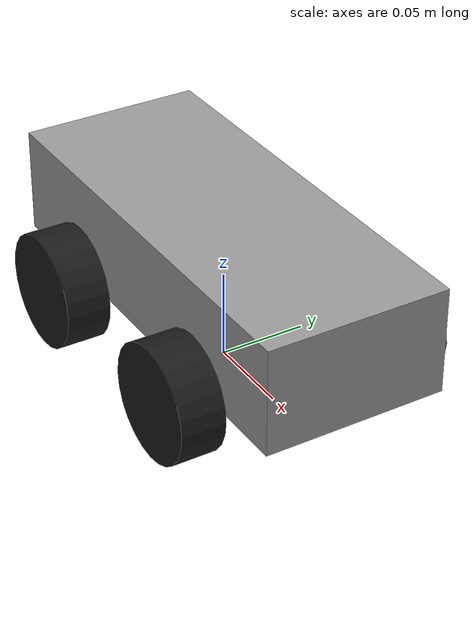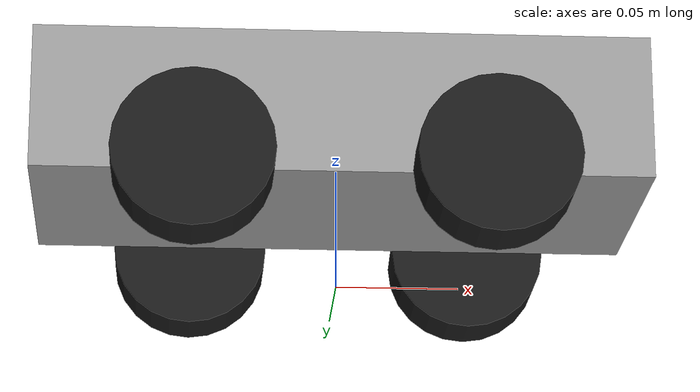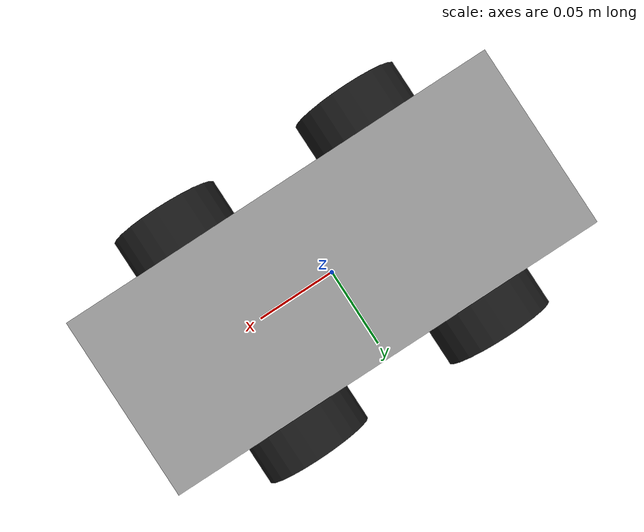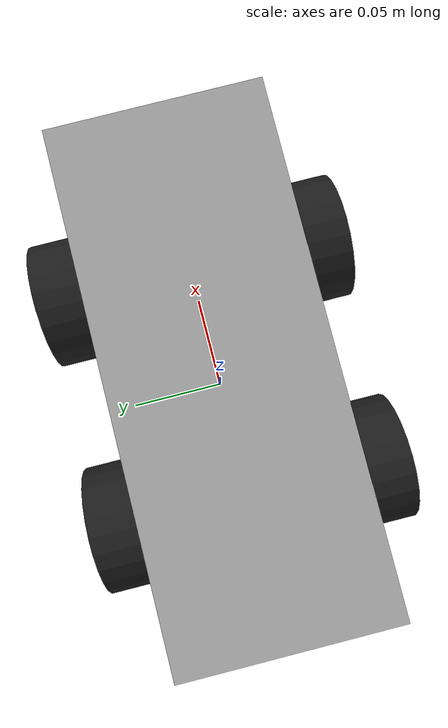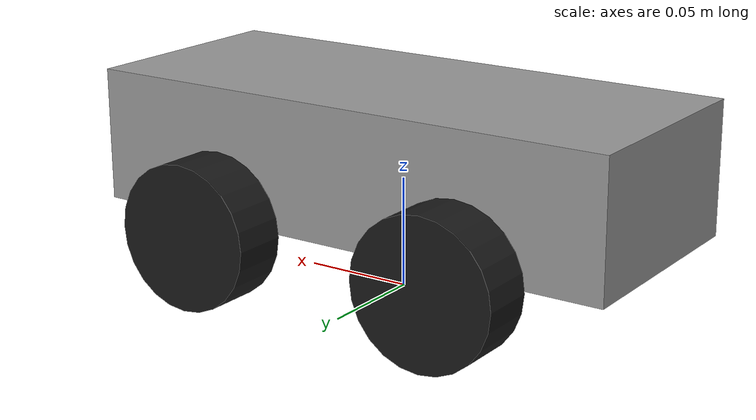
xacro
<?xml version="1.0"?>
<robot xmlns:xacro="http://www.ros.org/wiki/xacro" name="robot">

  <!-- ===== 실측값 (본체/바퀴 치수) ===== -->
  <xacro:property name="chassis_length" value="0.25"/>    <!-- 본체 길이(전후), PCB 길이 25cm, 2026-10-01 자로 실측 확인 완료 (URDF chassis_length 0.25 와 일치) -->
  <xacro:property name="chassis_width" value="0.103"/>    <!-- 본체 폭(좌우), PCB 실측 103mm (바퀴 포함 외곽 160mm) -->
  <xacro:property name="chassis_height" value="0.06"/>    <!-- 본체 높이, 미확정 임시값 -->
  <xacro:property name="wheel_radius" value="0.0325"/>    <!-- 바퀴 반지름, 실측 -->
  <xacro:property name="wheel_width" value="0.025"/>      <!-- 바퀴 폭(두께), 실측 -->
  <xacro:property name="wheel_separation" value="0.133"/> <!-- 좌우 바퀴 중심 간 거리, 실측 -->
  <xacro:property name="wheelbase" value="0.12"/>         <!-- 앞뒤 바퀴 축 간 거리, 실측 -->

  <material name="chassis_gray"><color rgba="0.6 0.6 0.6 1"/></material>
  <material name="wheel_black"><color rgba="0.1 0.1 0.1 1"/></material>

  <!-- base_footprint: 지면에 투영된 가상 기준 프레임 (Nav2가 요구하는 표준 이름, 임의 변경 금지) -->
  <link name="base_footprint"/>

  <joint name="base_joint" type="fixed">
    <parent link="base_footprint"/>
    <child link="base_link"/>
    <origin xyz="0 0 ${wheel_radius}" rpy="0 0 0"/>
  </joint>

  <!-- base_link: 네 바퀴 회전축이 이루는 사각형의 정중앙에 위치 (ROS2/Nav2 표준 이름, 임의 변경 금지) -->
  <link name="base_link">
    <visual>
      <origin xyz="0 0 ${chassis_height/2}"/>
      <geometry><box size="${chassis_length} ${chassis_width} ${chassis_height}"/></geometry>
      <material name="chassis_gray"/>
    </visual>
    <collision>
      <origin xyz="0 0 ${chassis_height/2}"/>
      <geometry><box size="${chassis_length} ${chassis_width} ${chassis_height}"/></geometry>
    </collision>
    <inertial>
      <mass value="1.0"/>
      <origin xyz="0 0 ${chassis_height/2}"/>
      <inertia ixx="0.01" ixy="0" ixz="0" iyy="0.01" iyz="0" izz="0.02"/>
    </inertial>
  </link>

  <!-- 바퀴 링크/조인트 공통 매크로: prefix(x, y부호)만 바꿔 4개 바퀴에 재사용 -->
  <xacro:macro name="wheel" params="name x_sign y_sign">
    <joint name="${name}_wheel_joint" type="continuous">
      <parent link="base_link"/>
      <child link="${name}_wheel"/>
      <origin xyz="${x_sign * wheelbase/2} ${y_sign * wheel_separation/2} 0" rpy="-1.5708 0 0"/>
      <axis xyz="0 0 1"/>
    </joint>
    <link name="${name}_wheel">
      <visual>
        <geometry><cylinder radius="${wheel_radius}" length="${wheel_width}"/></geometry>
        <material name="wheel_black"/>
      </visual>
      <collision>
        <geometry><cylinder radius="${wheel_radius}" length="${wheel_width}"/></geometry>
      </collision>
      <inertial>
        <mass value="0.05"/>
        <inertia ixx="0.0001" ixy="0" ixz="0" iyy="0.0001" iyz="0" izz="0.0001"/>
      </inertial>
    </link>
  </xacro:macro>

  <!-- 좌전, 좌후, 우전, 우후 4개 바퀴 (모두 continuous, 캐스터 없음) -->
  <xacro:wheel name="left_front" x_sign="1" y_sign="1"/>
  <xacro:wheel name="left_rear" x_sign="-1" y_sign="1"/>
  <xacro:wheel name="right_front" x_sign="1" y_sign="-1"/>
  <xacro:wheel name="right_rear" x_sign="-1" y_sign="-1"/>

</robot>
